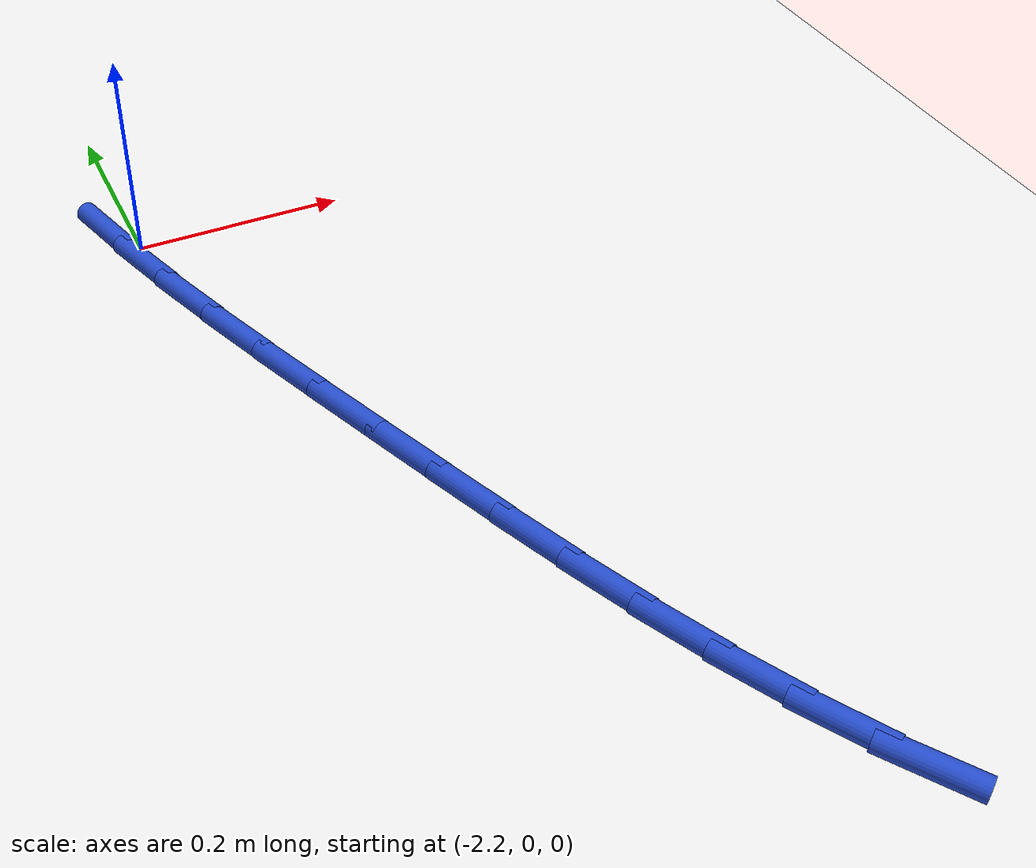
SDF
<sdf version="1.6">
 <world name="default">
  <model name="ground_plane">
   <static>1</static>
   <link name="link">
    <collision name="collision">
     <geometry><plane><normal>0 0 1</normal><size>100 100</size></plane></geometry>
     <surface><friction><ode><mu>100</mu><mu2>50</mu2></ode></friction></surface>
    </collision>
    <visual name="visual">
     <cast_shadows>0</cast_shadows>
     <geometry><plane><normal>0 0 1</normal><size>100 100</size></plane></geometry>
     <material>
      <script><uri>file://media/materials/scripts/gazebo.material</uri><name>Gazebo/WhiteGlow</name></script>
     </material>
    </visual>
   </link>
  </model>
  <model name="line">
   <link name="link_56">
    <pose>-2.2233685876947376 0.029934263237361827 0.01 0 1.57 -1.2911858087190589</pose>
    <collision name="collision">
     <geometry><cylinder><radius>0.01</radius><length>0.08</length></cylinder></geometry>
    </collision>
    <visual name="visual">
     <material>
      <script><name>Gazebo/Blue</name><uri>file://media/materials/scripts/gazebo.material</uri></script>
     </material>
     <geometry><cylinder><radius>0.01</radius><length>0.08</length></cylinder></geometry>
    </visual>
   </link>
   <link name="link_57">
    <pose>-2.2044852266908928 -0.03583101512315975 0.01 0 1.57 -1.2559864665905776</pose>
    <collision name="collision">
     <geometry><cylinder><radius>0.01</radius><length>0.08</length></cylinder></geometry>
    </collision>
    <visual name="visual">
     <material>
      <script><name>Gazebo/Blue</name><uri>file://media/materials/scripts/gazebo.material</uri></script>
     </material>
     <geometry><cylinder><radius>0.01</radius><length>0.08</length></cylinder></geometry>
    </visual>
   </link>
   <link name="link_58">
    <pose>-2.1828247292081078 -0.10234789099769297 0.01 0 1.57 -1.229434290391357</pose>
    <collision name="collision">
     <geometry><cylinder><radius>0.01</radius><length>0.08</length></cylinder></geometry>
    </collision>
    <visual name="visual">
     <material>
      <script><name>Gazebo/Blue</name><uri>file://media/materials/scripts/gazebo.material</uri></script>
     </material>
     <geometry><cylinder><radius>0.01</radius><length>0.08</length></cylinder></geometry>
    </visual>
   </link>
   <link name="link_59">
    <pose>-2.1590522523062257 -0.16926170636885235 0.01 0 1.57 -1.2105761337937129</pose>
    <collision name="collision">
     <geometry><cylinder><radius>0.01</radius><length>0.08</length></cylinder></geometry>
    </collision>
    <visual name="visual">
     <material>
      <script><name>Gazebo/Blue</name><uri>file://media/materials/scripts/gazebo.material</uri></script>
     </material>
     <geometry><cylinder><radius>0.01</radius><length>0.08</length></cylinder></geometry>
    </visual>
   </link>
   <link name="link_60">
    <pose>-2.1338329530450904 -0.2362178032192495 0.01 0 1.57 -1.1988111423730603</pose>
    <collision name="collision">
     <geometry><cylinder><radius>0.01</radius><length>0.08</length></cylinder></geometry>
    </collision>
    <visual name="visual">
     <material>
      <script><name>Gazebo/Blue</name><uri>file://media/materials/scripts/gazebo.material</uri></script>
     </material>
     <geometry><cylinder><radius>0.01</radius><length>0.08</length></cylinder></geometry>
    </visual>
   </link>
   <link name="link_61">
    <pose>-2.107831988484543 -0.3028615235314991 0.01 0 1.57 -1.193862197582628</pose>
    <collision name="collision">
     <geometry><cylinder><radius>0.01</radius><length>0.08</length></cylinder></geometry>
    </collision>
    <visual name="visual">
     <material>
      <script><name>Gazebo/Blue</name><uri>file://media/materials/scripts/gazebo.material</uri></script>
     </material>
     <geometry><cylinder><radius>0.01</radius><length>0.08</length></cylinder></geometry>
    </visual>
   </link>
   <link name="link_62">
    <pose>-2.0817143155291906 -0.3688382204176995 0.01 0 1.57 -1.1925783405634804</pose>
    <collision name="collision">
     <geometry><cylinder><radius>0.01</radius><length>0.08</length></cylinder></geometry>
    </collision>
    <visual name="visual">
     <material>
      <script><name>Gazebo/Blue</name><uri>file://media/materials/scripts/gazebo.material</uri></script>
     </material>
     <geometry><cylinder><radius>0.01</radius><length>0.08</length></cylinder></geometry>
    </visual>
   </link>
   <link name="link_63">
    <pose>-2.055899143190141 -0.43380691162347584 0.01 0 1.57 -1.185511474114834</pose>
    <collision name="collision">
     <geometry><cylinder><radius>0.01</radius><length>0.08</length></cylinder></geometry>
    </collision>
    <visual name="visual">
     <material>
      <script><name>Gazebo/Blue</name><uri>file://media/materials/scripts/gazebo.material</uri></script>
     </material>
     <geometry><cylinder><radius>0.01</radius><length>0.08</length></cylinder></geometry>
    </visual>
   </link>
   <link name="link_64">
    <pose>-2.030081609650049 -0.4974668763281298 0.01 0 1.57 -1.1705257591556286</pose>
    <collision name="collision">
     <geometry><cylinder><radius>0.01</radius><length>0.08</length></cylinder></geometry>
    </collision>
    <visual name="visual">
     <material>
      <script><name>Gazebo/Blue</name><uri>file://media/materials/scripts/gazebo.material</uri></script>
     </material>
     <geometry><cylinder><radius>0.01</radius><length>0.08</length></cylinder></geometry>
    </visual>
   </link>
   <link name="link_65">
    <pose>-2.00382415756959 -0.5595247721493 0.01 0 1.57 -1.1470883567147367</pose>
    <collision name="collision">
     <geometry><cylinder><radius>0.01</radius><length>0.08</length></cylinder></geometry>
    </collision>
    <visual name="visual">
     <material>
      <script><name>Gazebo/Blue</name><uri>file://media/materials/scripts/gazebo.material</uri></script>
     </material>
     <geometry><cylinder><radius>0.01</radius><length>0.08</length></cylinder></geometry>
    </visual>
   </link>
   <link name="link_66">
    <pose>-1.9766892296094396 -0.6196872567046251 0.01 0 1.57 -1.114585060720898</pose>
    <collision name="collision">
     <geometry><cylinder><radius>0.01</radius><length>0.08</length></cylinder></geometry>
    </collision>
    <visual name="visual">
     <material>
      <script><name>Gazebo/Blue</name><uri>file://media/materials/scripts/gazebo.material</uri></script>
     </material>
     <geometry><cylinder><radius>0.01</radius><length>0.08</length></cylinder></geometry>
    </visual>
   </link>
   <link name="link_67">
    <pose>-1.9482392684302727 -0.6776609876117412 0.01 0 1.57 -1.0723613265763883</pose>
    <collision name="collision">
     <geometry><cylinder><radius>0.01</radius><length>0.08</length></cylinder></geometry>
    </collision>
    <visual name="visual">
     <material>
      <script><name>Gazebo/Blue</name><uri>file://media/materials/scripts/gazebo.material</uri></script>
     </material>
     <geometry><cylinder><radius>0.01</radius><length>0.08</length></cylinder></geometry>
    </visual>
   </link>
   <link name="link_68">
    <pose>-1.9180367166927654 -0.7331526224882878 0.01 0 1.57 -1.0198025491351521</pose>
    <collision name="collision">
     <geometry><cylinder><radius>0.01</radius><length>0.08</length></cylinder></geometry>
    </collision>
    <visual name="visual">
     <material>
      <script><name>Gazebo/Blue</name><uri>file://media/materials/scripts/gazebo.material</uri></script>
     </material>
     <geometry><cylinder><radius>0.01</radius><length>0.08</length></cylinder></geometry>
    </visual>
   </link>
   <link name="link_69">
    <pose>-1.8856440170575934 -0.785868818951901 0.01 0 1.57 -0.9564672525619791</pose>
    <collision name="collision">
     <geometry><cylinder><radius>0.01</radius><length>0.08</length></cylinder></geometry>
    </collision>
    <visual name="visual">
     <material>
      <script><name>Gazebo/Blue</name><uri>file://media/materials/scripts/gazebo.material</uri></script>
     </material>
     <geometry><cylinder><radius>0.01</radius><length>0.08</length></cylinder></geometry>
    </visual>
   </link>
  </model>
 </world>
</sdf>
